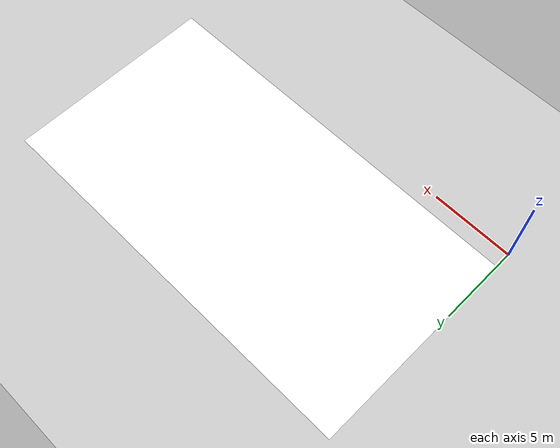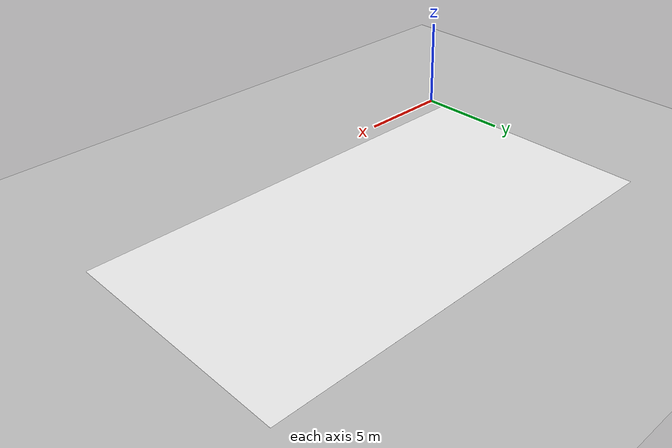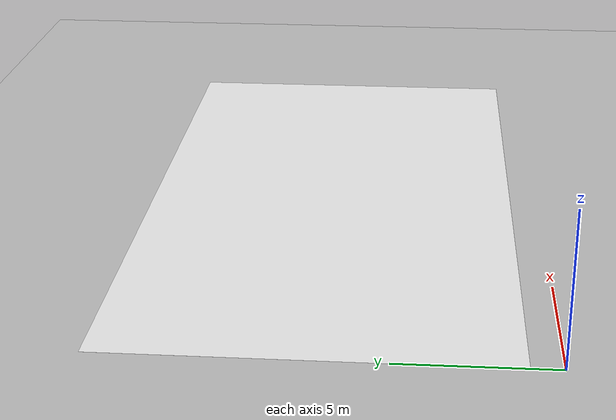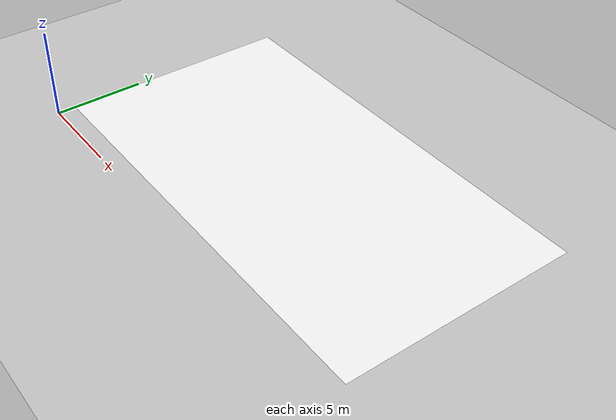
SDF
<?xml version="1.0" ?>
<sdf version="1.6">
  <world name="multi_obstacle_world">
    <include><uri>model://sun</uri></include>
    <include><uri>model://ground_plane</uri></include>

    <!-- Movement area visualization (24x13m, centered at (12, 7.5)) -->
    <model name='movement_area'>
      <pose>12.0 7.5 0.001 0 0 0</pose>
      <static>true</static>
      <link name='area'>
        <visual name='visual'>
          <geometry>
            <box><size>24.0 13.0 0.001</size></box>
          </geometry>
          <material>
            <ambient>1.0 1.0 1.0 1</ambient>
            <diffuse>1.0 1.0 1.0 1</diffuse>
            <specular>0.1 0.1 0.1 1</specular>
          </material>
        </visual>
      </link>
    </model>

    <gui fullscreen='0'>
      <camera name='user_camera'>
        <!-- 真上視点: マップ中心(12, 7.5)を見下ろす -->
        <pose>12.0 7.5 30.0 0 1.5708 0</pose>
        <view_controller>orbit</view_controller>
      </camera>
    </gui>

    <physics name='default_physics' default='0' type='ode'>
      <gravity>0 0 -9.8</gravity>
      <max_step_size>0.001</max_step_size>
      <!-- real_time_update_rate × max_step_size = 目標リアルタイム係数
           CBF計算負荷が高い場合は real_time_update_rate を下げる (例: 500→RT係数0.5) -->
      <real_time_update_rate>1000</real_time_update_rate>
      <real_time_factor>1.0</real_time_factor>
    </physics>
  </world>
</sdf>
